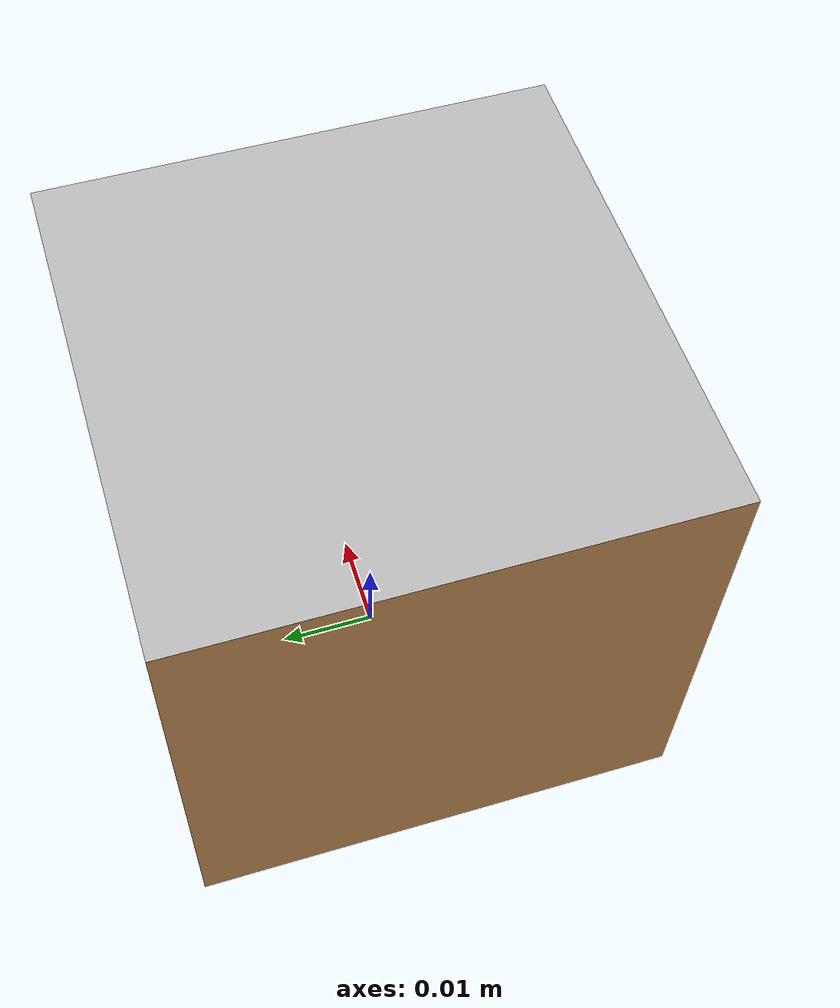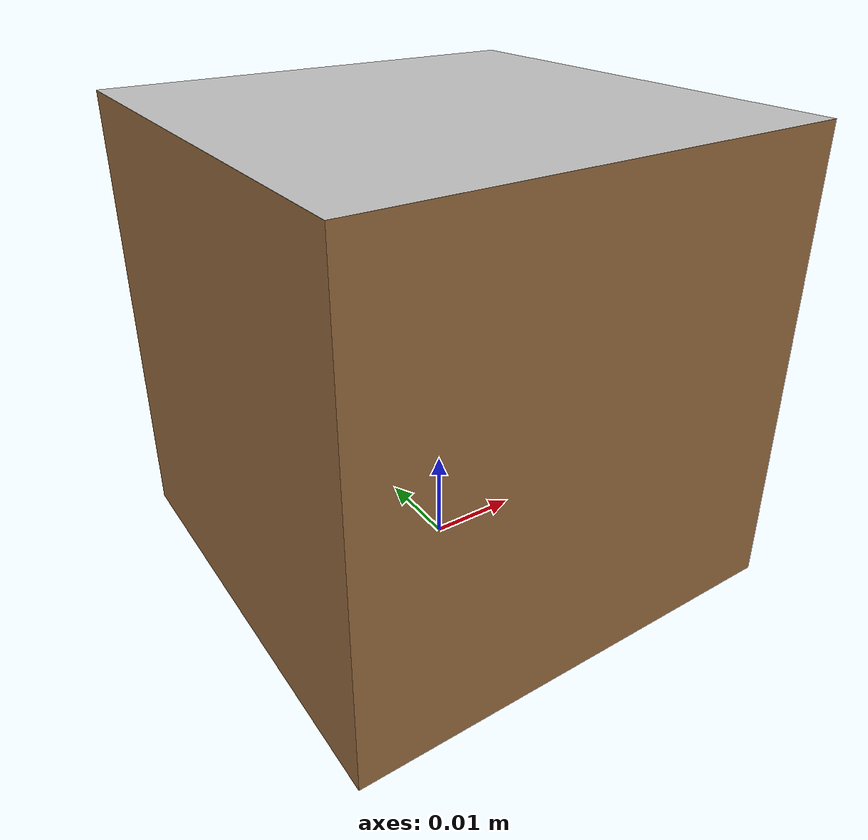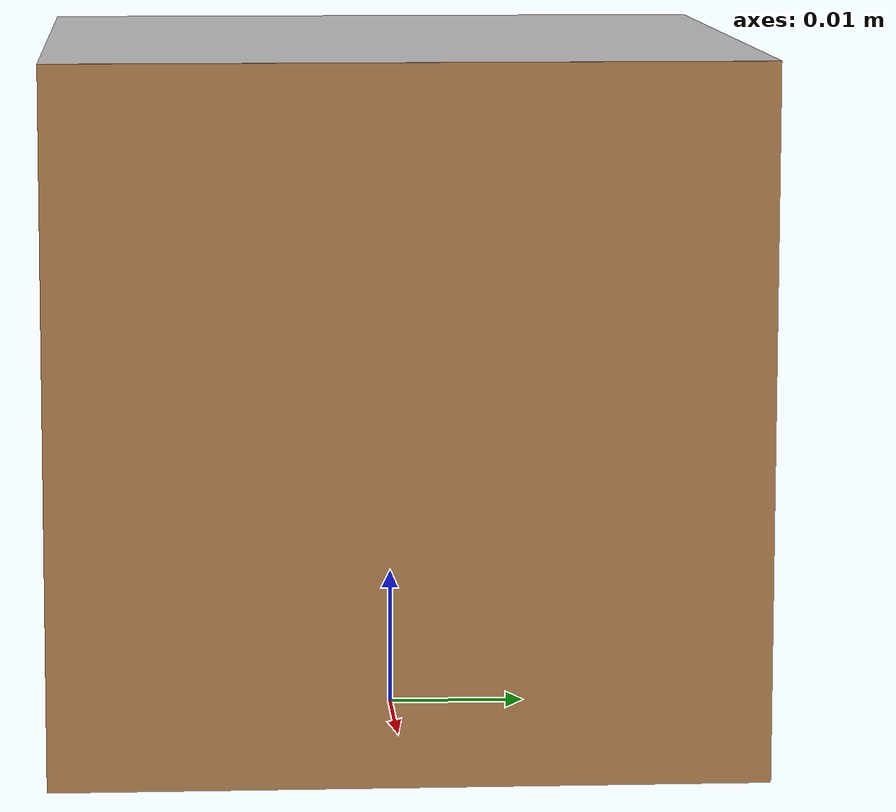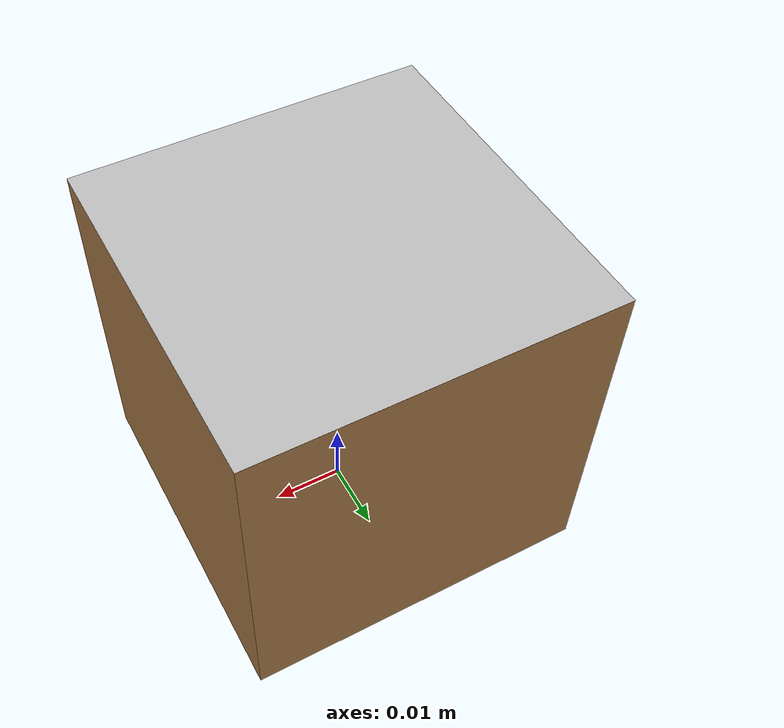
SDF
<?xml version="1.0"?>
<sdf version="1.5">
  <model name="marker">
     <static>false</static>

     <link name="marker_link">
      <inertial>
        <mass>0.390</mass>
        <inertia>
          <ixx>0.00058</ixx>
          <ixy>0</ixy>
          <ixz>0</ixz>
          <iyy>0.00058</iyy>
          <iyz>0</iyz>
          <izz>0.00019</izz>
        </inertia>
      </inertial>
      <collision name="box">
       <pose>0 0 0.025 0 0 0</pose>
        <geometry>
          <box>
            <size>0.05 0.05 0.05</size>
          </box>
        </geometry>
	    <surface>
          <friction>
            <ode>
              <mu>0.6</mu>
              <mu2>0.6</mu2>
            </ode>
          </friction>
        </surface>
      </collision>
      <visual name="box">
	    <pose>0 0 0.025 0 0 0</pose>
        <geometry>
          <box>
            <size>0.05 0.05 0.05</size>
          </box>
        </geometry>
	    <material>
	      <script>
	        <uri>file://media/materials/scripts/gazebo.material</uri>
	        <name>Gazebo/WoodPallet</name>
	      </script>
	    </material>
      </visual>
      <collision name="surface">
        <pose>0 0 0.0500025 0 0 0</pose>
        <geometry>
          <box>
            <size>0.05 0.05 1e-5</size>
          </box>
        </geometry>
      </collision>
      <visual name="surface">
	    <pose>0 0 0.0500025 0 0 0</pose>
        <geometry>
          <box>
            <size>0.05 0.05 1e-5</size>
          </box>
        </geometry>
        <material>
          <script>
            <uri>model://marker/materials/scripts</uri>
            <uri>model://marker/materials/textures</uri>
            <name>marker/Diffuse</name>
          </script>
        </material>
      </visual>
    </link>
  </model>
</sdf>
